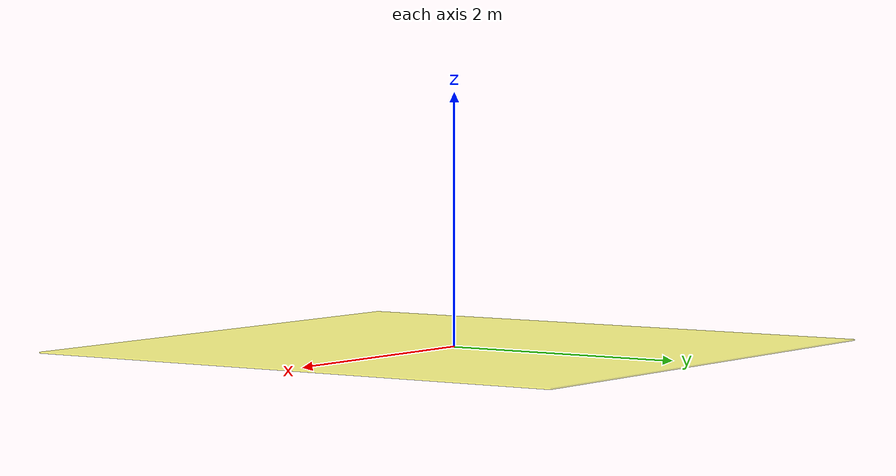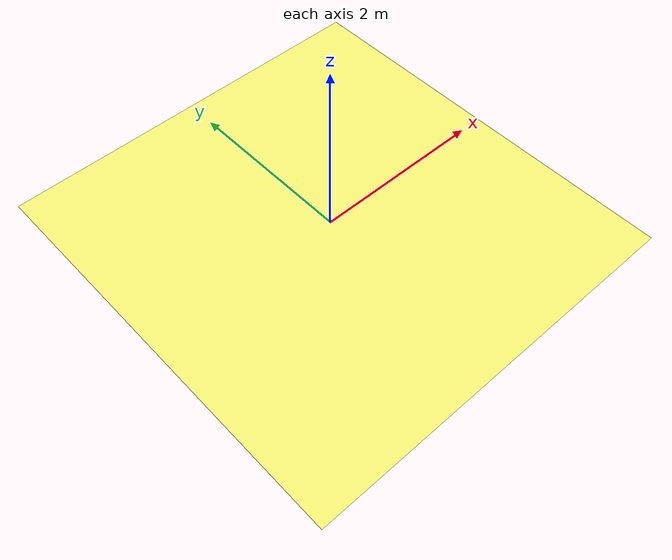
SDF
<?xml version="1.0" ?>
<sdf version="1.8">
  <model name="speed_zone">
    <static>true</static>

    <link name="base_link">
      <visual name="zone_visual">
        <pose>0 0 0.005 0 0 0</pose>
        <geometry>
          <box><size>4.5 4.7 0.01</size></box>
        </geometry>
        <material>
          <ambient>1.0 1.0 0.0 0.5</ambient>
          <diffuse>1.0 1.0 0.0 0.5</diffuse>
          <specular>0.1 0.1 0.0 1</specular>
        </material>
      </visual>
    </link>
  </model>
</sdf>
